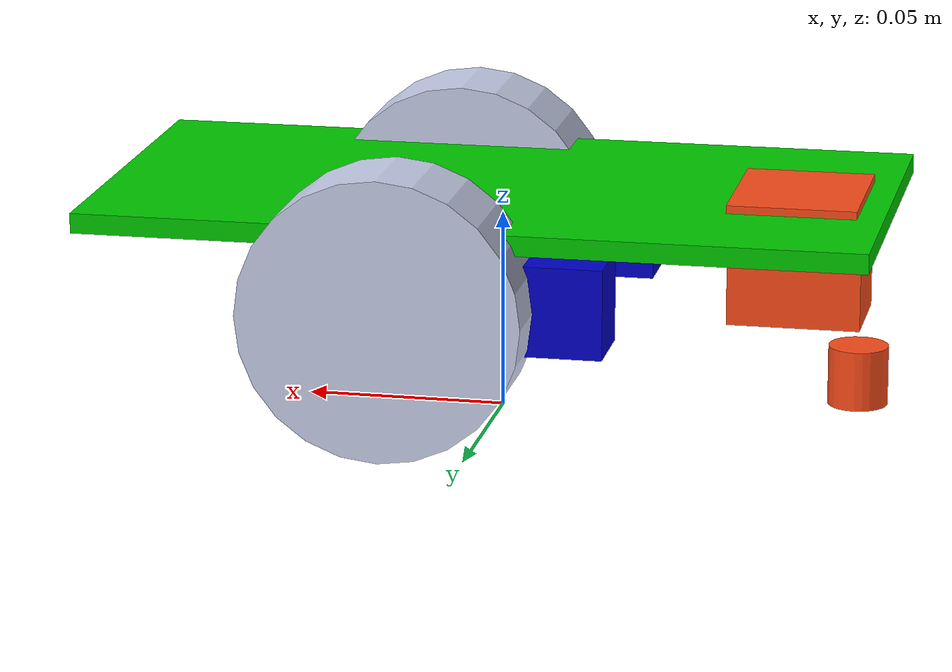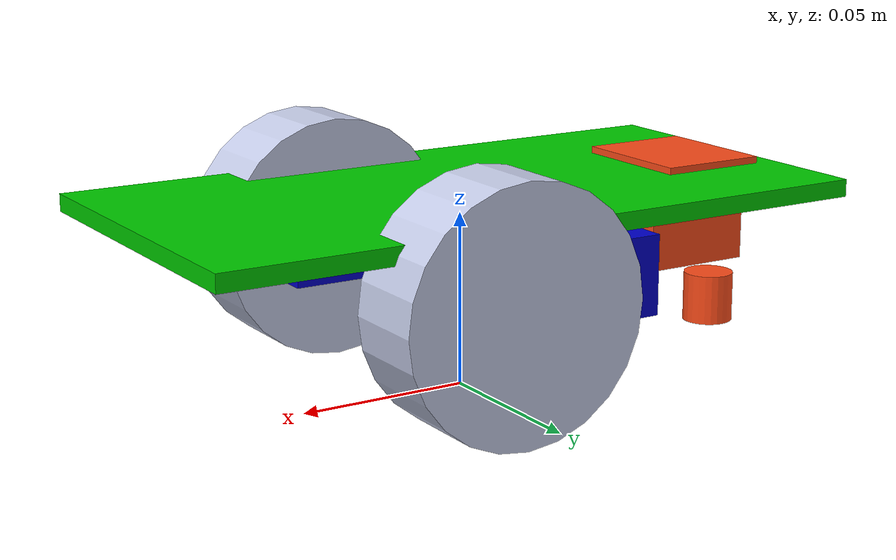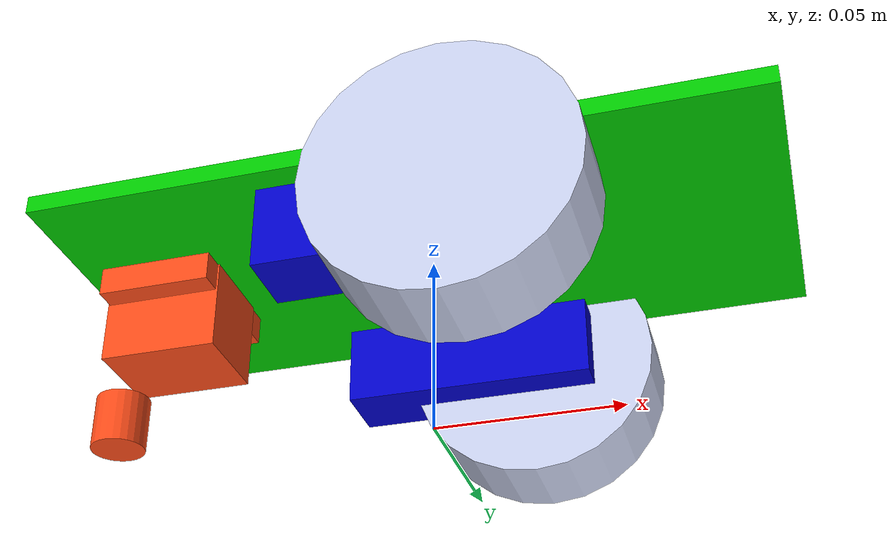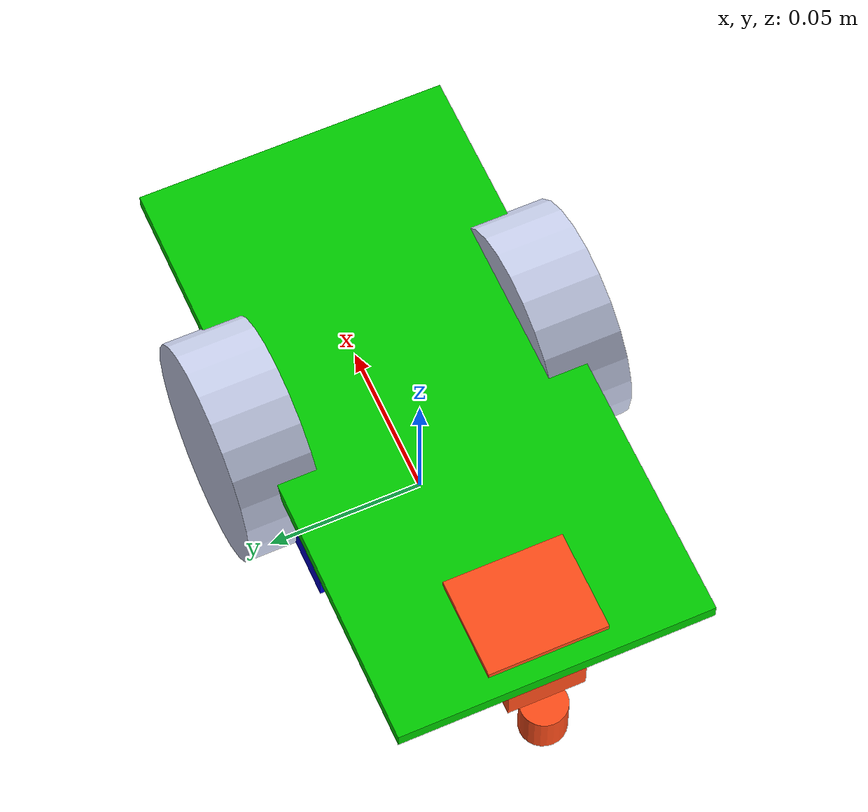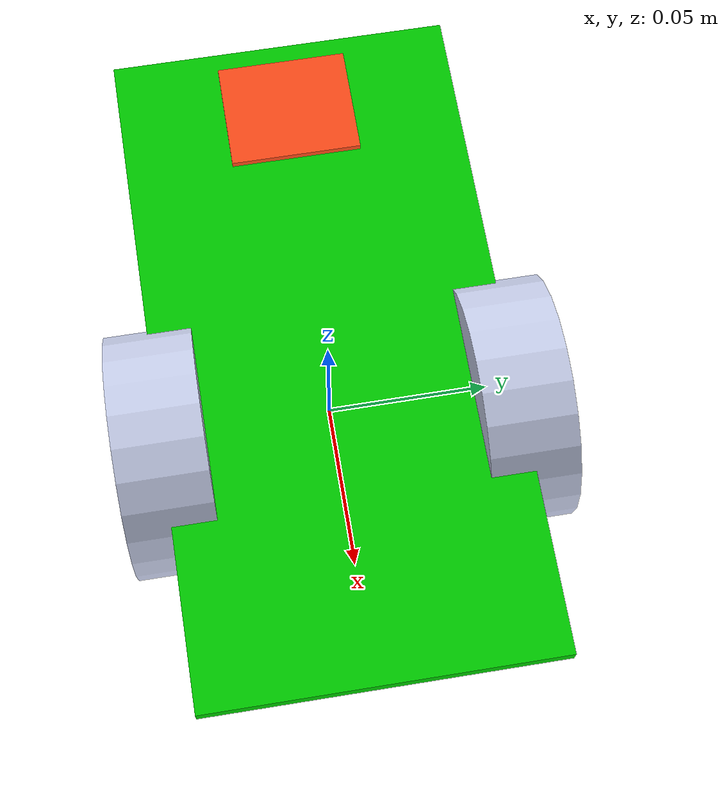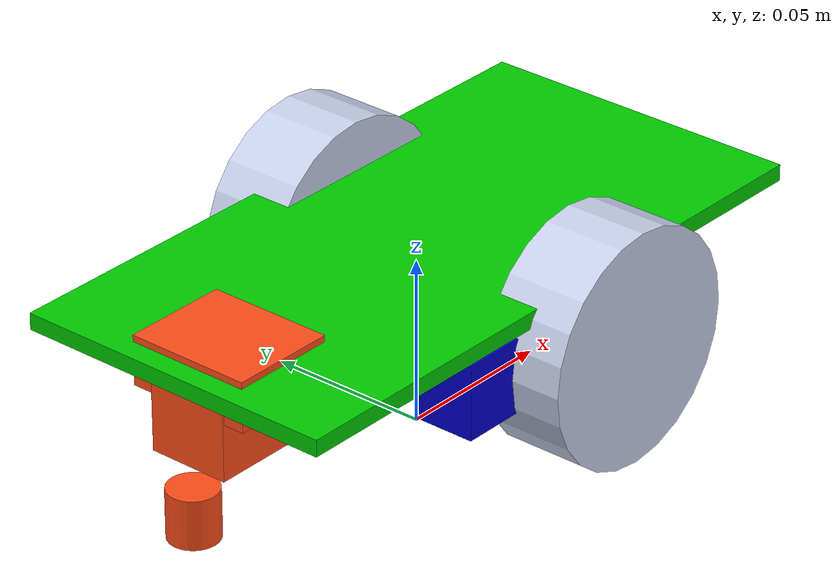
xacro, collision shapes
<?xml version="1.0"?>
<robot name="diffbot"
  xmlns:xacro="http://www.ros.org/wiki/xacro"
  xmlns:gazebo="http://www.gazebosim.org/schema/gazebo_urdf">

  <!-- === Propiedades === -->
  <!-- Definición de propiedades reutilizables: masas, colores, dimensiones de ruedas y caster -->
  <xacro:property name="chassis_mass" value="0.800" />
  <!-- Radio de la rueda en metros -->
  <xacro:property name="wheel_radius" value="0.035" /> <!-- 70mm de diámetro = 35mm de radio -->
  <!-- Ancho de la rueda en metros -->
  <xacro:property name="wheel_width" value="0.025" /> <!-- 25mm de ancho -->
  <!-- Ancho entre ruedas en metros -->
  <xacro:property name="wheel_separation" value="0.100" /> <!-- 100mm de ancho del chasis -->
  <!-- Separación entre ruedas en metros -->
  <xacro:property name="caster_origin_xyz" value="-0.075 0 -0.0075" /> <!-- Posición del caster respecto al chasis -->
  <!-- Posición del caster respecto al chasis -->

  <xacro:property name="base_elevation" value="0.055" />
  <xacro:property name="base_color" value="green" />
  <xacro:property name="wheel_color" value="silver" />
  <xacro:property name="caster_color" value="orange" />

  <!-- === Includes === -->
  <!-- Inclusión de archivos xacro auxiliares para macros de inercia y motor -->
  <xacro:include filename="$(find robot_description)/urdf/inertial_macros.xacro" />
  <xacro:include filename="$(find robot_description)/urdf/motor.xacro" />

  <link name="base_footprint" />

  <joint name="base_joint" type="fixed">
    <parent link="base_footprint" />
    <child link="base_link" />
    <origin xyz="0 0 ${base_elevation}" rpy="0 0 0" />
  </joint>

  <!-- === Chasis del robot === -->
  <!-- Link principal del robot: el chasis -->
  <link name="base_link">
    <visual>
      <origin xyz="0 0 0" rpy="0 0 0" />
      <geometry>
        <mesh filename="file://$(find robot_description)/meshes/chassis.stl"/>
      </geometry>
      <material name="${base_color}" />
      <!-- Colo que se visualiza en RViz-->
    </visual>

    <collision>
      <origin xyz="0 0 0" rpy="0 0 0" />
      <geometry>
        <box size="0.195 0.1 0.005" />
      </geometry>
    </collision>

    <xacro:inertial_box mass="0.8" x="0.195" y="0.100" z="0.005">
      <origin xyz="0 0 0.0525" rpy="0 0 0" />
    </xacro:inertial_box>
  </link>

  <!-- === Macro para ruedas === -->
  <!-- Macro reutilizable para definir una rueda y su joint asociado. Parametrizado por radio y
  separación. -->
  <xacro:macro name="wheel" params="prefix xyz axis rpy">

    <joint name="${prefix}_wheel_joint" type="continuous">
      <parent link="base_link" />
      <child link="${prefix}_wheel_link" />
      <origin xyz="${xyz}" rpy="${rpy}" />
      <axis xyz="${axis}" />
    </joint>

    <link name="${prefix}_wheel_link">
      <visual>
        <origin xyz="0 0 0" rpy="1.5708 0 0" />
        <geometry>
          <mesh filename="file://$(find robot_description)/meshes/wheel.stl"/>
        </geometry>
        <material name="${wheel_color}" />
        <!-- Colo que se visualiza en RViz-->
      </visual>

      <collision>
        <origin xyz="0 0 0" rpy="1.5708 0 0" />
        <geometry>
          <cylinder radius="${wheel_radius}" length="${wheel_width}"/>
        </geometry>
        <material name="${wheel_color}" />
      </collision>

      <xacro:inertial_cylinder mass="0.150" radius="${wheel_radius}" length="${wheel_width}">
        <origin xyz="0 0 0" rpy="0 0 0" />
      </xacro:inertial_cylinder>
    </link>

  </xacro:macro>

  <!-- === Ruedas y motores === -->
  <!-- Instanciación de ruedas y motores usando las macros -->
  <xacro:wheel prefix="left" xyz="0.0185  0.05 -0.0175" axis="0 1 0" rpy="0 1.5708 0"/> <!-- Posición rueda izquierda -->
  <xacro:wheel prefix="right" xyz="0.0185 -0.05 -0.0175" axis="0 -1 0" rpy="0 1.5708 3.14159"/> <!-- Posición rueda derecha -->
  <!-- Motores -->
  <xacro:motor prefix="left" chassis_width="0.1" reflect="false" />
  <xacro:motor prefix="right" chassis_width="0.1" reflect="true" />

  <!-- === Caster (rueda loca) === -->
  <!-- Definición del caster y sus componentes -->
  <!-- BASE FIJA -->

  <joint name="caster_base_joint" type="fixed">
    <parent link="base_link" />
    <child link="caster" />
    <origin xyz="${caster_origin_xyz}" rpy="0 0 0" />
  </joint>

  <!-- BASE FIJA  -->
  <link name="caster">
    <visual>
      <origin xyz="0 0 0.0045" rpy="0 0 0" />
      <geometry>
        <mesh filename="file://$(find robot_description)/meshes/caster_base.stl" />
      </geometry>
      <material name="${caster_color}" />
    </visual>

    <collision>
      <origin xyz="0 0 0.0045" rpy="0 0 0" />
      <geometry>
        <box size="0.032 0.038 0.015" />
      </geometry>
    </collision>

    <xacro:inertial_box mass="0.020" x="0.032" y="0.038" z="0.015">
      <origin xyz="0 0 0" rpy="0 0 0" />
    </xacro:inertial_box>
  </link>

  <!-- Rueda loca -->
  <joint name="caster_wheel_joint" type="continuous">
    <parent link="caster_wheel_support" />
    <child link="caster_wheel" />
    <origin xyz="-0.015 0 -0.020" rpy="0 0 0" /> <!-- Posición de la rueda giratoria respecto al soporte -->
    <axis xyz="0 1 0" />
  </joint>

  <!-- RUEDA MOVIL  -->
  <link name="caster_wheel">
    <visual>
      <!-- Rotamos el cilindro 90° alrededor del eje X para que su eje de giro sea el eje Y -->
      <origin xyz="0 0 0" rpy="0 0 0" />
      <geometry>
        <mesh filename="file://$(find robot_description)/meshes/caster_wheel.stl" />
      </geometry>
      <material name="${caster_color}" />
    </visual>

    <collision>
      <!-- Misma rotación para colisión -->
      <origin xyz="0 0 -0.007" rpy="0 0 0" />
      <geometry>
        <cylinder radius="0.0075" length="0.015" />
      </geometry>
    </collision>

    <!-- Inercia orientada correctamente -->
    <xacro:inertial_cylinder mass="0.010" radius="0.0075" length="0.015"> <!-- 10g, 15mm diámetro = 7.5mm radio -->
      <origin xyz="0 0 0" rpy="0 0 0" />
    </xacro:inertial_cylinder>
  </link>

  <!-- Soporte de la rueda loca -->
  <joint name="caster_support_joint" type="continuous">
    <parent link="base_link" />
    <child link="caster_wheel_support" />
    <origin xyz="-0.075 0 -0.015" rpy="0 0 0" /> <!-- Posición del soporte de la rueda giratoria -->
    <axis xyz="0 0 1" />
  </joint>

  <link name="caster_wheel_support">
    <visual>
      <origin xyz="0 0 0" rpy="0 0 0" />
      <geometry>
        <mesh filename="file://$(find robot_description)/meshes/caster_wheel_support.stl" />
      </geometry>
      <material name="${caster_color}" />
    </visual>

    <collision>
      <origin xyz="0 0 0" rpy="0 0 0" />
      <geometry>
        <box size="0.033 0.025 0.025" />
      </geometry>
    </collision>

    <xacro:inertial_box mass="0.020" x="0.033" y="0.025" z="0.025">
      <origin xyz="0 0 0" rpy="0 0 0" />
    </xacro:inertial_box>
  </link>

  <!-- Configuración de ros2_control para la interfaz de hardware -->
  <!-- El nombre "GazeboSystem" y el tipo "system" son estándar para la integración con Gazebo. -->
  <ros2_control name="GazeboSystem" type="system">
    <hardware>
      <!-- Plugin de Gazebo para ROS 2 Control -->
      <plugin>gz_ros2_control/GazeboSimSystem</plugin>
    </hardware>

    <joint name="left_wheel_joint">
      <command_interface name="velocity" />
      <state_interface name="position" />
      <state_interface name="velocity" />
    </joint>

    <joint name="right_wheel_joint">
      <command_interface name="velocity" />
      <state_interface name="position" />
      <state_interface name="velocity" />
    </joint>
  </ros2_control>

  <gazebo>
    <plugin filename="gz_ros2_control-system" name="gz_ros2_control::GazeboSimROS2ControlPlugin">
      <parameters>$(find diffbot_control)/config/controllers.yaml</parameters>
    </plugin>
  </gazebo>

</robot>

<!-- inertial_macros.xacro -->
<robot xmlns:xacro="http://www.ros.org/wiki/xacro" >
    <!-- Specify some standard inertial calculations https://en.wikipedia.org/wiki/List_of_moments_of_inertia -->
    <!-- These make use of xacro's mathematical functionality -->

    <xacro:macro name="inertial_sphere" params="mass radius *origin">
        <inertial>
            <xacro:insert_block name="origin"/>
            <mass value="${mass}" />
            <inertia ixx="${(2/5) * mass * (radius*radius)}" ixy="0.0" ixz="0.0"
                    iyy="${(2/5) * mass * (radius*radius)}" iyz="0.0"
                    izz="${(2/5) * mass * (radius*radius)}" />
        </inertial>
    </xacro:macro>

    <xacro:macro name="inertial_box" params="mass x y z *origin">
        <inertial>
            <xacro:insert_block name="origin"/>
            <mass value="${mass}" />
            <inertia ixx="${(1/12) * mass * (y*y+z*z)}" ixy="0.0" ixz="0.0"
                    iyy="${(1/12) * mass * (x*x+z*z)}" iyz="0.0"
                    izz="${(1/12) * mass * (x*x+y*y)}" />
        </inertial>
    </xacro:macro>

    <xacro:macro name="inertial_cylinder" params="mass length radius *origin">
        <inertial>
            <xacro:insert_block name="origin"/>
            <mass value="${mass}" />
            <inertia ixx="${(1/12) * mass * (3*radius*radius + length*length)}" ixy="0.0" ixz="0.0"
                    iyy="${(1/12) * mass * (3*radius*radius + length*length)}" iyz="0.0"
                    izz="${(1/2) * mass * (radius*radius)}" />
        </inertial>
    </xacro:macro>

    <xacro:macro name="dummy_inertial">
        <inertial>
            <origin xyz="0 0 0" rpy="0 0 0"/>
            <mass value="0.001"/>
            <inertia ixx="0.00001" ixy="0" ixz="0"
                     iyy="0.00001" iyz="0"
                     izz="0.00001"/>
        </inertial>
    </xacro:macro>

    <!-- RVIZ material RGBA definition -->

    <material name="red">
        <color rgba="0.8 0.0 0.0 1.0"/>
    </material>
    <material name="green">
        <color rgba="0.0 0.8 0.0 1.0"/>
    </material>
    <material name="blue">
        <color rgba="0.0 0.0 0.8 1.0"/>
    </material>
    <material name="black">
        <color rgba="0 0 0 1"/>
    </material>
    <material name="white">
        <color rgba="1 1 1 1"/>
    </material>

    <material name="orange">
        <color rgba="1 0.3 0.1 1"/>
    </material>

    <material name="silver">
        <color rgba="0.79 0.82 0.93 1"/>
    </material>
    <material name="dark_grey">
        <color rgba="0.3 0.3 0.3 1"/>
    </material>
</robot>

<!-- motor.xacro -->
<robot xmlns:xacro="http://ros.org/wiki/xacro"
       xmlns:gazebo="http://www.gazebosim.org/schema/gazebo_urdf">

    <xacro:macro name="motor" params="prefix chassis_width:=0 reflect:=false">
        <!-- Parámetros -->
        <xacro:property name="motor_mass" value="0.1"/>
        <xacro:property name="motor_x_size" value="0.07"/> <!-- 70mm -->
        <xacro:property name="motor_y_size" value="0.0188"/> <!-- 18.8mm -->
        <xacro:property name="motor_z_size" value="0.0225"/> <!-- 22.5mm -->

        <xacro:property name="motor_x_offset" value="0.0015"/>
        <xacro:property name="motor_y_offset" value="0.0216"/>
        <xacro:property name="motor_z_offset" value="-0.017"/>

        <xacro:property name="pos_x_joint" value="${motor_x_offset}"/>
        <xacro:property name="pos_y_joint" value="${(chassis_width/2) - motor_y_offset + (motor_y_size/2)}"/>
        <xacro:property name="pos_z_joint" value="${motor_z_offset}"/>

        <!-- Link del motor -->
        <link name="${prefix}_motor">
            <!-- Visual -->
            <visual>
                <origin xyz="0 0 0" rpy="0 0 0"/>
                <geometry>
                    <xacro:if value="${reflect}">
                        <mesh filename="file://$(find robot_description)/meshes/motor.stl" scale="1 -1 1"/>
                    </xacro:if>
                    <xacro:unless value="${reflect}">
                        <mesh filename="file://$(find robot_description)/meshes/motor.stl"/>
                    </xacro:unless>
                </geometry>
                <material name="blue"/>
            </visual>

            <!-- Colisión -->
            <collision>
                <origin xyz="0 0 0" rpy="0 0 0"/>
                <geometry>
                    <box size="${motor_x_size} ${motor_y_size} ${motor_z_size}"/>
                </geometry>
            </collision>

            <!-- Inercia -->
            <xacro:inertial_box mass="${motor_mass}" x="${motor_x_size}" y="${motor_y_size}" z="${motor_z_size}">
                <origin xyz="0 0 0" rpy="0 0 0"/>
            </xacro:inertial_box>
        </link>

        <!-- Joint del motor -->
        <joint name="${prefix}_motor_joint" type="fixed">
            <parent link="base_link"/>
            <child link="${prefix}_motor"/>

            <xacro:if value="${reflect}">
                <origin xyz="${pos_x_joint} ${-1 * pos_y_joint} ${pos_z_joint}" rpy="0 0 0"/>
            </xacro:if>
            <xacro:unless value="${reflect}">
                <origin xyz="${pos_x_joint} ${pos_y_joint} ${pos_z_joint}" rpy="0 0 0"/>
            </xacro:unless>
        </joint>
    </xacro:macro>
</robot>
